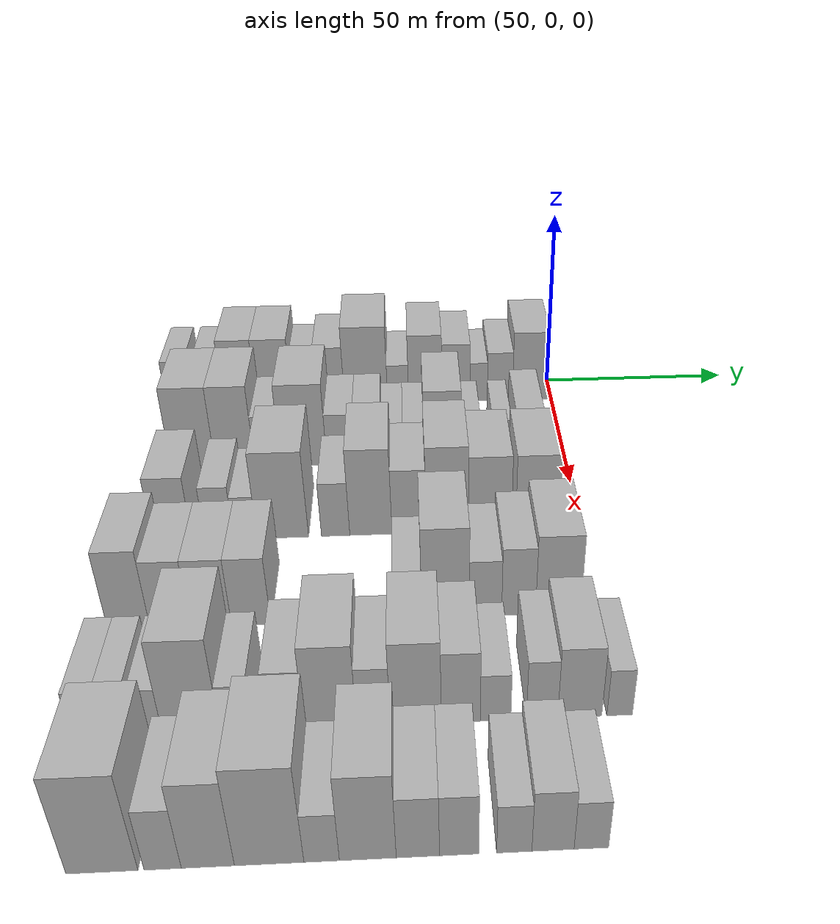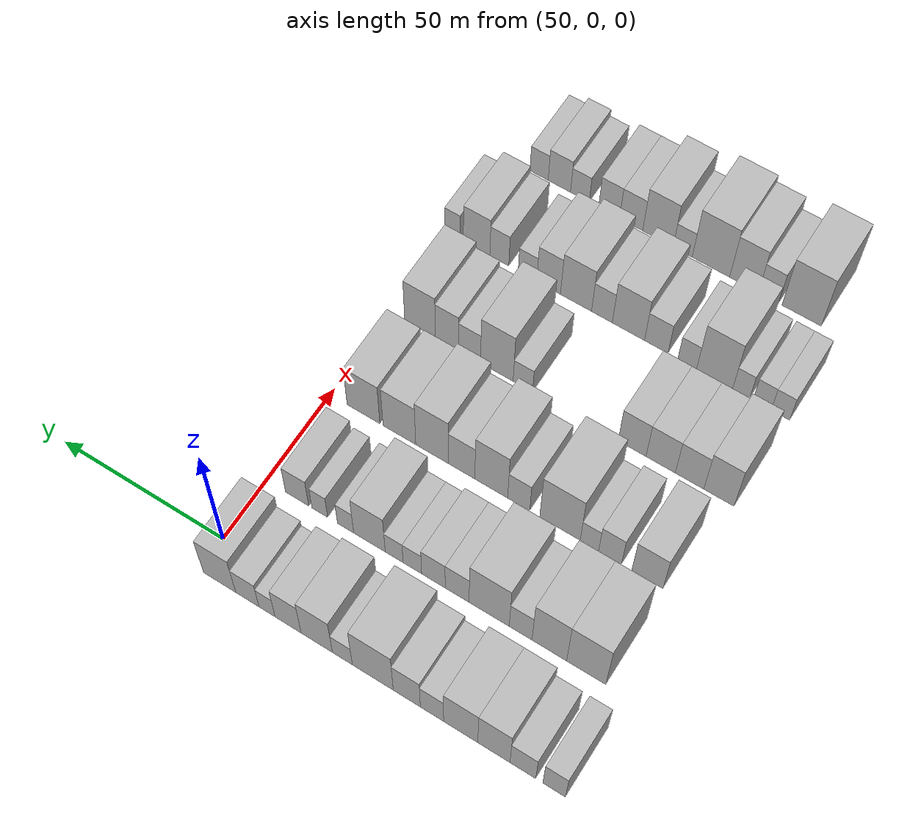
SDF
<sdf version="1.6">
 <world name="default">
  <model name="building_50">
   <static>1</static>
   <pose>50.0000 -103.4571 0 0.000000 0.000000 0.000000</pose>
   <link name="link">
    <pose>0 0 7.50 0 0 0</pose>
    <collision name="collision"><geometry><box><size>20.0000 6.2550 15.0000</size></box></geometry></collision>
    <visual name="visual">
     <cast_shadows>0</cast_shadows>
     <geometry><box><size>20.0000 6.2550 15.0000</size></box></geometry>
     <material>
      <script>
       <uri>model://HANNAS_wall/materials/scripts</uri>
       <uri>model://HANNAS_wall/materials/textures</uri>
       <name>vrc/HANNAS_wall</name>
      </script>
     </material>
    </visual>
   </link>
  </model>
  <model name="building_51">
   <static>1</static>
   <pose>50.0000 -94.7267 0 0.000000 0.000000 0.000000</pose>
   <link name="link">
    <pose>0 0 7.50 0 0 0</pose>
    <collision name="collision"><geometry><box><size>20.0000 7.2057 15.0000</size></box></geometry></collision>
    <visual name="visual">
     <cast_shadows>0</cast_shadows>
     <geometry><box><size>20.0000 7.2057 15.0000</size></box></geometry>
     <material>
      <script>
       <uri>model://HANNAS_wall/materials/scripts</uri>
       <uri>model://HANNAS_wall/materials/textures</uri>
       <name>vrc/HANNAS_wall</name>
      </script>
     </material>
    </visual>
   </link>
  </model>
  <model name="building_52">
   <static>1</static>
   <pose>50.0000 -86.5692 0 0.000000 0.000000 0.000000</pose>
   <link name="link">
    <pose>0 0 10.50 0 0 0</pose>
    <collision name="collision"><geometry><box><size>20.0000 9.1093 21.0000</size></box></geometry></collision>
    <visual name="visual">
     <cast_shadows>0</cast_shadows>
     <geometry><box><size>20.0000 9.1093 21.0000</size></box></geometry>
     <material>
      <script>
       <uri>model://HANNAS_wall/materials/scripts</uri>
       <uri>model://HANNAS_wall/materials/textures</uri>
       <name>vrc/HANNAS_wall</name>
      </script>
     </material>
    </visual>
   </link>
  </model>
  <model name="building_53">
   <static>1</static>
   <pose>50.0000 -77.1655 0 0.000000 0.000000 0.000000</pose>
   <link name="link">
    <pose>0 0 10.50 0 0 0</pose>
    <collision name="collision"><geometry><box><size>20.0000 9.6979 21.0000</size></box></geometry></collision>
    <visual name="visual">
     <cast_shadows>0</cast_shadows>
     <geometry><box><size>20.0000 9.6979 21.0000</size></box></geometry>
     <material>
      <script>
       <uri>model://HANNAS_wall/materials/scripts</uri>
       <uri>model://HANNAS_wall/materials/textures</uri>
       <name>vrc/HANNAS_wall</name>
      </script>
     </material>
    </visual>
   </link>
  </model>
  <model name="building_54">
   <static>1</static>
   <pose>50.0000 -68.9674 0 0.000000 0.000000 0.000000</pose>
   <link name="link">
    <pose>0 0 7.50 0 0 0</pose>
    <collision name="collision"><geometry><box><size>20.0000 6.6983 15.0000</size></box></geometry></collision>
    <visual name="visual">
     <cast_shadows>0</cast_shadows>
     <geometry><box><size>20.0000 6.6983 15.0000</size></box></geometry>
     <material>
      <script>
       <uri>model://HANNAS_wall/materials/scripts</uri>
       <uri>model://HANNAS_wall/materials/textures</uri>
       <name>vrc/HANNAS_wall</name>
      </script>
     </material>
    </visual>
   </link>
  </model>
  <model name="building_55">
   <static>1</static>
   <pose>50.0000 -61.6997 0 0.000000 0.000000 0.000000</pose>
   <link name="link">
    <pose>0 0 9.00 0 0 0</pose>
    <collision name="collision"><geometry><box><size>20.0000 7.8370 18.0000</size></box></geometry></collision>
    <visual name="visual">
     <cast_shadows>0</cast_shadows>
     <geometry><box><size>20.0000 7.8370 18.0000</size></box></geometry>
     <material>
      <script>
       <uri>model://HANNAS_wall/materials/scripts</uri>
       <uri>model://HANNAS_wall/materials/textures</uri>
       <name>vrc/HANNAS_wall</name>
      </script>
     </material>
    </visual>
   </link>
  </model>
  <model name="building_56">
   <static>1</static>
   <pose>50.0000 -51.8079 0 0.000000 0.000000 0.000000</pose>
   <link name="link">
    <pose>0 0 12.00 0 0 0</pose>
    <collision name="collision"><geometry><box><size>20.0000 11.9467 24.0000</size></box></geometry></collision>
    <visual name="visual">
     <cast_shadows>0</cast_shadows>
     <geometry><box><size>20.0000 11.9467 24.0000</size></box></geometry>
     <material>
      <script>
       <uri>model://HANNAS_wall/materials/scripts</uri>
       <uri>model://HANNAS_wall/materials/textures</uri>
       <name>vrc/HANNAS_wall</name>
      </script>
     </material>
    </visual>
   </link>
  </model>
  <model name="building_57">
   <static>1</static>
   <pose>50.0000 -42.8947 0 0.000000 0.000000 0.000000</pose>
   <link name="link">
    <pose>0 0 6.00 0 0 0</pose>
    <collision name="collision"><geometry><box><size>20.0000 5.8796 12.0000</size></box></geometry></collision>
    <visual name="visual">
     <cast_shadows>0</cast_shadows>
     <geometry><box><size>20.0000 5.8796 12.0000</size></box></geometry>
     <material>
      <script>
       <uri>model://HANNAS_wall/materials/scripts</uri>
       <uri>model://HANNAS_wall/materials/textures</uri>
       <name>vrc/HANNAS_wall</name>
      </script>
     </material>
    </visual>
   </link>
  </model>
  <model name="building_58">
   <static>1</static>
   <pose>50.0000 -35.3146 0 0.000000 0.000000 0.000000</pose>
   <link name="link">
    <pose>0 0 10.50 0 0 0</pose>
    <collision name="collision"><geometry><box><size>20.0000 9.2808 21.0000</size></box></geometry></collision>
    <visual name="visual">
     <cast_shadows>0</cast_shadows>
     <geometry><box><size>20.0000 9.2808 21.0000</size></box></geometry>
     <material>
      <script>
       <uri>model://HANNAS_wall/materials/scripts</uri>
       <uri>model://HANNAS_wall/materials/textures</uri>
       <name>vrc/HANNAS_wall</name>
      </script>
     </material>
    </visual>
   </link>
  </model>
  <model name="building_59">
   <static>1</static>
   <pose>50.0000 -26.7613 0 0.000000 0.000000 0.000000</pose>
   <link name="link">
    <pose>0 0 9.00 0 0 0</pose>
    <collision name="collision"><geometry><box><size>20.0000 7.8257 18.0000</size></box></geometry></collision>
    <visual name="visual">
     <cast_shadows>0</cast_shadows>
     <geometry><box><size>20.0000 7.8257 18.0000</size></box></geometry>
     <material>
      <script>
       <uri>model://HANNAS_wall/materials/scripts</uri>
       <uri>model://HANNAS_wall/materials/textures</uri>
       <name>vrc/HANNAS_wall</name>
      </script>
     </material>
    </visual>
   </link>
  </model>
  <model name="building_60">
   <static>1</static>
   <pose>50.0000 -20.4336 0 0.000000 0.000000 0.000000</pose>
   <link name="link">
    <pose>0 0 6.00 0 0 0</pose>
    <collision name="collision"><geometry><box><size>20.0000 4.8297 12.0000</size></box></geometry></collision>
    <visual name="visual">
     <cast_shadows>0</cast_shadows>
     <geometry><box><size>20.0000 4.8297 12.0000</size></box></geometry>
     <material>
      <script>
       <uri>model://HANNAS_wall/materials/scripts</uri>
       <uri>model://HANNAS_wall/materials/textures</uri>
       <name>vrc/HANNAS_wall</name>
      </script>
     </material>
    </visual>
   </link>
  </model>
  <model name="building_61">
   <static>1</static>
   <pose>50.0000 -14.4853 0 0.000000 0.000000 0.000000</pose>
   <link name="link">
    <pose>0 0 7.50 0 0 0</pose>
    <collision name="collision"><geometry><box><size>20.0000 7.0667 15.0000</size></box></geometry></collision>
    <visual name="visual">
     <cast_shadows>0</cast_shadows>
     <geometry><box><size>20.0000 7.0667 15.0000</size></box></geometry>
     <material>
      <script>
       <uri>model://HANNAS_wall/materials/scripts</uri>
       <uri>model://HANNAS_wall/materials/textures</uri>
       <name>vrc/HANNAS_wall</name>
      </script>
     </material>
    </visual>
   </link>
  </model>
  <model name="building_62">
   <static>1</static>
   <pose>50.0000 -6.0214 0 0.000000 0.000000 0.000000</pose>
   <link name="link">
    <pose>0 0 10.50 0 0 0</pose>
    <collision name="collision"><geometry><box><size>20.0000 9.8612 21.0000</size></box></geometry></collision>
    <visual name="visual">
     <cast_shadows>0</cast_shadows>
     <geometry><box><size>20.0000 9.8612 21.0000</size></box></geometry>
     <material>
      <script>
       <uri>model://HANNAS_wall/materials/scripts</uri>
       <uri>model://HANNAS_wall/materials/textures</uri>
       <name>vrc/HANNAS_wall</name>
      </script>
     </material>
    </visual>
   </link>
  </model>
  <model name="building_169">
   <static>1</static>
   <pose>79.0000 -95.0513 0 0.000000 0.000000 0.000000</pose>
   <link name="link">
    <pose>0 0 12.00 0 0 0</pose>
    <collision name="collision"><geometry><box><size>20.0000 11.1471 24.0000</size></box></geometry></collision>
    <visual name="visual">
     <cast_shadows>0</cast_shadows>
     <geometry><box><size>20.0000 11.1471 24.0000</size></box></geometry>
     <material>
      <script>
       <uri>model://HANNAS_wall/materials/scripts</uri>
       <uri>model://HANNAS_wall/materials/textures</uri>
       <name>vrc/HANNAS_wall</name>
      </script>
     </material>
    </visual>
   </link>
  </model>
  <model name="building_170">
   <static>1</static>
   <pose>79.0000 -84.5015 0 0.000000 0.000000 0.000000</pose>
   <link name="link">
    <pose>0 0 12.00 0 0 0</pose>
    <collision name="collision"><geometry><box><size>20.0000 9.9525 24.0000</size></box></geometry></collision>
    <visual name="visual">
     <cast_shadows>0</cast_shadows>
     <geometry><box><size>20.0000 9.9525 24.0000</size></box></geometry>
     <material>
      <script>
       <uri>model://HANNAS_wall/materials/scripts</uri>
       <uri>model://HANNAS_wall/materials/textures</uri>
       <name>vrc/HANNAS_wall</name>
      </script>
     </material>
    </visual>
   </link>
  </model>
  <model name="building_171">
   <static>1</static>
   <pose>79.0000 -76.2337 0 0.000000 0.000000 0.000000</pose>
   <link name="link">
    <pose>0 0 7.50 0 0 0</pose>
    <collision name="collision"><geometry><box><size>20.0000 6.5830 15.0000</size></box></geometry></collision>
    <visual name="visual">
     <cast_shadows>0</cast_shadows>
     <geometry><box><size>20.0000 6.5830 15.0000</size></box></geometry>
     <material>
      <script>
       <uri>model://HANNAS_wall/materials/scripts</uri>
       <uri>model://HANNAS_wall/materials/textures</uri>
       <name>vrc/HANNAS_wall</name>
      </script>
     </material>
    </visual>
   </link>
  </model>
  <model name="building_172">
   <static>1</static>
   <pose>79.0000 -67.0782 0 0.000000 0.000000 0.000000</pose>
   <link name="link">
    <pose>0 0 12.00 0 0 0</pose>
    <collision name="collision"><geometry><box><size>20.0000 11.7280 24.0000</size></box></geometry></collision>
    <visual name="visual">
     <cast_shadows>0</cast_shadows>
     <geometry><box><size>20.0000 11.7280 24.0000</size></box></geometry>
     <material>
      <script>
       <uri>model://HANNAS_wall/materials/scripts</uri>
       <uri>model://HANNAS_wall/materials/textures</uri>
       <name>vrc/HANNAS_wall</name>
      </script>
     </material>
    </visual>
   </link>
  </model>
  <model name="building_173">
   <static>1</static>
   <pose>79.0000 -57.7067 0 0.000000 0.000000 0.000000</pose>
   <link name="link">
    <pose>0 0 7.50 0 0 0</pose>
    <collision name="collision"><geometry><box><size>20.0000 7.0150 15.0000</size></box></geometry></collision>
    <visual name="visual">
     <cast_shadows>0</cast_shadows>
     <geometry><box><size>20.0000 7.0150 15.0000</size></box></geometry>
     <material>
      <script>
       <uri>model://HANNAS_wall/materials/scripts</uri>
       <uri>model://HANNAS_wall/materials/textures</uri>
       <name>vrc/HANNAS_wall</name>
      </script>
     </material>
    </visual>
   </link>
  </model>
  <model name="building_174">
   <static>1</static>
   <pose>79.0000 -50.7053 0 0.000000 0.000000 0.000000</pose>
   <link name="link">
    <pose>0 0 7.50 0 0 0</pose>
    <collision name="collision"><geometry><box><size>20.0000 6.9877 15.0000</size></box></geometry></collision>
    <visual name="visual">
     <cast_shadows>0</cast_shadows>
     <geometry><box><size>20.0000 6.9877 15.0000</size></box></geometry>
     <material>
      <script>
       <uri>model://HANNAS_wall/materials/scripts</uri>
       <uri>model://HANNAS_wall/materials/textures</uri>
       <name>vrc/HANNAS_wall</name>
      </script>
     </material>
    </visual>
   </link>
  </model>
  <model name="building_175">
   <static>1</static>
   <pose>79.0000 -44.4444 0 0.000000 0.000000 0.000000</pose>
   <link name="link">
    <pose>0 0 6.00 0 0 0</pose>
    <collision name="collision"><geometry><box><size>20.0000 5.5342 12.0000</size></box></geometry></collision>
    <visual name="visual">
     <cast_shadows>0</cast_shadows>
     <geometry><box><size>20.0000 5.5342 12.0000</size></box></geometry>
     <material>
      <script>
       <uri>model://HANNAS_wall/materials/scripts</uri>
       <uri>model://HANNAS_wall/materials/textures</uri>
       <name>vrc/HANNAS_wall</name>
      </script>
     </material>
    </visual>
   </link>
  </model>
  <model name="building_176">
   <static>1</static>
   <pose>79.0000 -39.0052 0 0.000000 0.000000 0.000000</pose>
   <link name="link">
    <pose>0 0 6.00 0 0 0</pose>
    <collision name="collision"><geometry><box><size>20.0000 5.3442 12.0000</size></box></geometry></collision>
    <visual name="visual">
     <cast_shadows>0</cast_shadows>
     <geometry><box><size>20.0000 5.3442 12.0000</size></box></geometry>
     <material>
      <script>
       <uri>model://HANNAS_wall/materials/scripts</uri>
       <uri>model://HANNAS_wall/materials/textures</uri>
       <name>vrc/HANNAS_wall</name>
      </script>
     </material>
    </visual>
   </link>
  </model>
  <model name="building_177">
   <static>1</static>
   <pose>79.0000 -31.5619 0 0.000000 0.000000 0.000000</pose>
   <link name="link">
    <pose>0 0 10.50 0 0 0</pose>
    <collision name="collision"><geometry><box><size>20.0000 9.5423 21.0000</size></box></geometry></collision>
    <visual name="visual">
     <cast_shadows>0</cast_shadows>
     <geometry><box><size>20.0000 9.5423 21.0000</size></box></geometry>
     <material>
      <script>
       <uri>model://HANNAS_wall/materials/scripts</uri>
       <uri>model://HANNAS_wall/materials/textures</uri>
       <name>vrc/HANNAS_wall</name>
      </script>
     </material>
    </visual>
   </link>
  </model>
  <model name="building_178">
   <static>1</static>
   <pose>79.0000 -24.3274 0 0.000000 0.000000 0.000000</pose>
   <link name="link">
    <pose>0 0 6.00 0 0 0</pose>
    <collision name="collision"><geometry><box><size>20.0000 4.9267 12.0000</size></box></geometry></collision>
    <visual name="visual">
     <cast_shadows>0</cast_shadows>
     <geometry><box><size>20.0000 4.9267 12.0000</size></box></geometry>
     <material>
      <script>
       <uri>model://HANNAS_wall/materials/scripts</uri>
       <uri>model://HANNAS_wall/materials/textures</uri>
       <name>vrc/HANNAS_wall</name>
      </script>
     </material>
    </visual>
   </link>
  </model>
  <model name="building_179">
   <static>1</static>
   <pose>79.0000 -16.4608 0 0.000000 0.000000 0.000000</pose>
   <link name="link">
    <pose>0 0 6.00 0 0 0</pose>
    <collision name="collision"><geometry><box><size>20.0000 4.8066 12.0000</size></box></geometry></collision>
    <visual name="visual">
     <cast_shadows>0</cast_shadows>
     <geometry><box><size>20.0000 4.8066 12.0000</size></box></geometry>
     <material>
      <script>
       <uri>model://HANNAS_wall/materials/scripts</uri>
       <uri>model://HANNAS_wall/materials/textures</uri>
       <name>vrc/HANNAS_wall</name>
      </script>
     </material>
    </visual>
   </link>
  </model>
  <model name="building_180">
   <static>1</static>
   <pose>79.0000 -9.4882 0 0.000000 0.000000 0.000000</pose>
   <link name="link">
    <pose>0 0 7.50 0 0 0</pose>
    <collision name="collision"><geometry><box><size>20.0000 7.1388 15.0000</size></box></geometry></collision>
    <visual name="visual">
     <cast_shadows>0</cast_shadows>
     <geometry><box><size>20.0000 7.1388 15.0000</size></box></geometry>
     <material>
      <script>
       <uri>model://HANNAS_wall/materials/scripts</uri>
       <uri>model://HANNAS_wall/materials/textures</uri>
       <name>vrc/HANNAS_wall</name>
      </script>
     </material>
    </visual>
   </link>
  </model>
  <model name="building_278">
   <static>1</static>
   <pose>108.0000 -95.5415 0 0.000000 0.000000 0.000000</pose>
   <link name="link">
    <pose>0 0 9.00 0 0 0</pose>
    <collision name="collision"><geometry><box><size>20.0000 8.9699 18.0000</size></box></geometry></collision>
    <visual name="visual">
     <cast_shadows>0</cast_shadows>
     <geometry><box><size>20.0000 8.9699 18.0000</size></box></geometry>
     <material>
      <script>
       <uri>model://HANNAS_wall/materials/scripts</uri>
       <uri>model://HANNAS_wall/materials/textures</uri>
       <name>vrc/HANNAS_wall</name>
      </script>
     </material>
    </visual>
   </link>
  </model>
  <model name="building_279">
   <static>1</static>
   <pose>108.0000 -84.7318 0 0.000000 0.000000 0.000000</pose>
   <link name="link">
    <pose>0 0 7.50 0 0 0</pose>
    <collision name="collision"><geometry><box><size>20.0000 6.6494 15.0000</size></box></geometry></collision>
    <visual name="visual">
     <cast_shadows>0</cast_shadows>
     <geometry><box><size>20.0000 6.6494 15.0000</size></box></geometry>
     <material>
      <script>
       <uri>model://HANNAS_wall/materials/scripts</uri>
       <uri>model://HANNAS_wall/materials/textures</uri>
       <name>vrc/HANNAS_wall</name>
      </script>
     </material>
    </visual>
   </link>
  </model>
  <model name="building_280">
   <static>1</static>
   <pose>108.0000 -78.7129 0 0.000000 0.000000 0.000000</pose>
   <link name="link">
    <pose>0 0 6.00 0 0 0</pose>
    <collision name="collision"><geometry><box><size>20.0000 5.3883 12.0000</size></box></geometry></collision>
    <visual name="visual">
     <cast_shadows>0</cast_shadows>
     <geometry><box><size>20.0000 5.3883 12.0000</size></box></geometry>
     <material>
      <script>
       <uri>model://HANNAS_wall/materials/scripts</uri>
       <uri>model://HANNAS_wall/materials/textures</uri>
       <name>vrc/HANNAS_wall</name>
      </script>
     </material>
    </visual>
   </link>
  </model>
  <model name="building_281">
   <static>1</static>
   <pose>108.0000 -70.0565 0 0.000000 0.000000 0.000000</pose>
   <link name="link">
    <pose>0 0 12.00 0 0 0</pose>
    <collision name="collision"><geometry><box><size>20.0000 11.9246 24.0000</size></box></geometry></collision>
    <visual name="visual">
     <cast_shadows>0</cast_shadows>
     <geometry><box><size>20.0000 11.9246 24.0000</size></box></geometry>
     <material>
      <script>
       <uri>model://HANNAS_wall/materials/scripts</uri>
       <uri>model://HANNAS_wall/materials/textures</uri>
       <name>vrc/HANNAS_wall</name>
      </script>
     </material>
    </visual>
   </link>
  </model>
  <model name="building_282">
   <static>1</static>
   <pose>108.0000 -57.7945 0 0.000000 0.000000 0.000000</pose>
   <link name="link">
    <pose>0 0 7.50 0 0 0</pose>
    <collision name="collision"><geometry><box><size>20.0000 6.5992 15.0000</size></box></geometry></collision>
    <visual name="visual">
     <cast_shadows>0</cast_shadows>
     <geometry><box><size>20.0000 6.5992 15.0000</size></box></geometry>
     <material>
      <script>
       <uri>model://HANNAS_wall/materials/scripts</uri>
       <uri>model://HANNAS_wall/materials/textures</uri>
       <name>vrc/HANNAS_wall</name>
      </script>
     </material>
    </visual>
   </link>
  </model>
  <model name="building_283">
   <static>1</static>
   <pose>108.0000 -49.5520 0 0.000000 0.000000 0.000000</pose>
   <link name="link">
    <pose>0 0 12.00 0 0 0</pose>
    <collision name="collision"><geometry><box><size>20.0000 9.8858 24.0000</size></box></geometry></collision>
    <visual name="visual">
     <cast_shadows>0</cast_shadows>
     <geometry><box><size>20.0000 9.8858 24.0000</size></box></geometry>
     <material>
      <script>
       <uri>model://HANNAS_wall/materials/scripts</uri>
       <uri>model://HANNAS_wall/materials/textures</uri>
       <name>vrc/HANNAS_wall</name>
      </script>
     </material>
    </visual>
   </link>
  </model>
  <model name="building_284">
   <static>1</static>
   <pose>108.0000 -40.5963 0 0.000000 0.000000 0.000000</pose>
   <link name="link">
    <pose>0 0 9.00 0 0 0</pose>
    <collision name="collision"><geometry><box><size>20.0000 8.0256 18.0000</size></box></geometry></collision>
    <visual name="visual">
     <cast_shadows>0</cast_shadows>
     <geometry><box><size>20.0000 8.0256 18.0000</size></box></geometry>
     <material>
      <script>
       <uri>model://HANNAS_wall/materials/scripts</uri>
       <uri>model://HANNAS_wall/materials/textures</uri>
       <name>vrc/HANNAS_wall</name>
      </script>
     </material>
    </visual>
   </link>
  </model>
  <model name="building_285">
   <static>1</static>
   <pose>108.0000 -31.6114 0 0.000000 0.000000 0.000000</pose>
   <link name="link">
    <pose>0 0 12.00 0 0 0</pose>
    <collision name="collision"><geometry><box><size>20.0000 9.9443 24.0000</size></box></geometry></collision>
    <visual name="visual">
     <cast_shadows>0</cast_shadows>
     <geometry><box><size>20.0000 9.9443 24.0000</size></box></geometry>
     <material>
      <script>
       <uri>model://HANNAS_wall/materials/scripts</uri>
       <uri>model://HANNAS_wall/materials/textures</uri>
       <name>vrc/HANNAS_wall</name>
      </script>
     </material>
    </visual>
   </link>
  </model>
  <model name="building_286">
   <static>1</static>
   <pose>108.0000 -21.5923 0 0.000000 0.000000 0.000000</pose>
   <link name="link">
    <pose>0 0 10.50 0 0 0</pose>
    <collision name="collision"><geometry><box><size>20.0000 10.0939 21.0000</size></box></geometry></collision>
    <visual name="visual">
     <cast_shadows>0</cast_shadows>
     <geometry><box><size>20.0000 10.0939 21.0000</size></box></geometry>
     <material>
      <script>
       <uri>model://HANNAS_wall/materials/scripts</uri>
       <uri>model://HANNAS_wall/materials/textures</uri>
       <name>vrc/HANNAS_wall</name>
      </script>
     </material>
    </visual>
   </link>
  </model>
  <model name="building_287">
   <static>1</static>
   <pose>108.0000 -10.4360 0 0.000000 0.000000 0.000000</pose>
   <link name="link">
    <pose>0 0 10.50 0 0 0</pose>
    <collision name="collision"><geometry><box><size>20.0000 10.2186 21.0000</size></box></geometry></collision>
    <visual name="visual">
     <cast_shadows>0</cast_shadows>
     <geometry><box><size>20.0000 10.2186 21.0000</size></box></geometry>
     <material>
      <script>
       <uri>model://HANNAS_wall/materials/scripts</uri>
       <uri>model://HANNAS_wall/materials/textures</uri>
       <name>vrc/HANNAS_wall</name>
      </script>
     </material>
    </visual>
   </link>
  </model>
  <model name="building_390">
   <static>1</static>
   <pose>137.0000 -99.8120 0 0.000000 0.000000 0.000000</pose>
   <link name="link">
    <pose>0 0 10.50 0 0 0</pose>
    <collision name="collision"><geometry><box><size>20.0000 8.8115 21.0000</size></box></geometry></collision>
    <visual name="visual">
     <cast_shadows>0</cast_shadows>
     <geometry><box><size>20.0000 8.8115 21.0000</size></box></geometry>
     <material>
      <script>
       <uri>model://HANNAS_wall/materials/scripts</uri>
       <uri>model://HANNAS_wall/materials/textures</uri>
       <name>vrc/HANNAS_wall</name>
      </script>
     </material>
    </visual>
   </link>
  </model>
  <model name="building_391">
   <static>1</static>
   <pose>137.0000 -91.2320 0 0.000000 0.000000 0.000000</pose>
   <link name="link">
    <pose>0 0 9.00 0 0 0</pose>
    <collision name="collision"><geometry><box><size>20.0000 8.3484 18.0000</size></box></geometry></collision>
    <visual name="visual">
     <cast_shadows>0</cast_shadows>
     <geometry><box><size>20.0000 8.3484 18.0000</size></box></geometry>
     <material>
      <script>
       <uri>model://HANNAS_wall/materials/scripts</uri>
       <uri>model://HANNAS_wall/materials/textures</uri>
       <name>vrc/HANNAS_wall</name>
      </script>
     </material>
    </visual>
   </link>
  </model>
  <model name="building_392">
   <static>1</static>
   <pose>137.0000 -82.7375 0 0.000000 0.000000 0.000000</pose>
   <link name="link">
    <pose>0 0 9.00 0 0 0</pose>
    <collision name="collision"><geometry><box><size>20.0000 8.6407 18.0000</size></box></geometry></collision>
    <visual name="visual">
     <cast_shadows>0</cast_shadows>
     <geometry><box><size>20.0000 8.6407 18.0000</size></box></geometry>
     <material>
      <script>
       <uri>model://HANNAS_wall/materials/scripts</uri>
       <uri>model://HANNAS_wall/materials/textures</uri>
       <name>vrc/HANNAS_wall</name>
      </script>
     </material>
    </visual>
   </link>
  </model>
  <model name="building_393">
   <static>1</static>
   <pose>137.0000 -74.2795 0 0.000000 0.000000 0.000000</pose>
   <link name="link">
    <pose>0 0 9.00 0 0 0</pose>
    <collision name="collision"><geometry><box><size>20.0000 8.2752 18.0000</size></box></geometry></collision>
    <visual name="visual">
     <cast_shadows>0</cast_shadows>
     <geometry><box><size>20.0000 8.2752 18.0000</size></box></geometry>
     <material>
      <script>
       <uri>model://HANNAS_wall/materials/scripts</uri>
       <uri>model://HANNAS_wall/materials/textures</uri>
       <name>vrc/HANNAS_wall</name>
      </script>
     </material>
    </visual>
   </link>
  </model>
  <model name="building_394">
   <static>1</static>
   <pose>137.0000 -41.1997 0 0.000000 0.000000 0.000000</pose>
   <link name="link">
    <pose>0 0 6.00 0 0 0</pose>
    <collision name="collision"><geometry><box><size>20.0000 5.9615 12.0000</size></box></geometry></collision>
    <visual name="visual">
     <cast_shadows>0</cast_shadows>
     <geometry><box><size>20.0000 5.9615 12.0000</size></box></geometry>
     <material>
      <script>
       <uri>model://HANNAS_wall/materials/scripts</uri>
       <uri>model://HANNAS_wall/materials/textures</uri>
       <name>vrc/HANNAS_wall</name>
      </script>
     </material>
    </visual>
   </link>
  </model>
  <model name="building_395">
   <static>1</static>
   <pose>137.0000 -33.1572 0 0.000000 0.000000 0.000000</pose>
   <link name="link">
    <pose>0 0 12.00 0 0 0</pose>
    <collision name="collision"><geometry><box><size>20.0000 10.1235 24.0000</size></box></geometry></collision>
    <visual name="visual">
     <cast_shadows>0</cast_shadows>
     <geometry><box><size>20.0000 10.1235 24.0000</size></box></geometry>
     <material>
      <script>
       <uri>model://HANNAS_wall/materials/scripts</uri>
       <uri>model://HANNAS_wall/materials/textures</uri>
       <name>vrc/HANNAS_wall</name>
      </script>
     </material>
    </visual>
   </link>
  </model>
  <model name="building_396">
   <static>1</static>
   <pose>137.0000 -24.6772 0 0.000000 0.000000 0.000000</pose>
   <link name="link">
    <pose>0 0 7.50 0 0 0</pose>
    <collision name="collision"><geometry><box><size>20.0000 6.8364 15.0000</size></box></geometry></collision>
    <visual name="visual">
     <cast_shadows>0</cast_shadows>
     <geometry><box><size>20.0000 6.8364 15.0000</size></box></geometry>
     <material>
      <script>
       <uri>model://HANNAS_wall/materials/scripts</uri>
       <uri>model://HANNAS_wall/materials/textures</uri>
       <name>vrc/HANNAS_wall</name>
      </script>
     </material>
    </visual>
   </link>
  </model>
  <model name="building_397">
   <static>1</static>
   <pose>137.0000 -17.6363 0 0.000000 0.000000 0.000000</pose>
   <link name="link">
    <pose>0 0 9.00 0 0 0</pose>
    <collision name="collision"><geometry><box><size>20.0000 7.2454 18.0000</size></box></geometry></collision>
    <visual name="visual">
     <cast_shadows>0</cast_shadows>
     <geometry><box><size>20.0000 7.2454 18.0000</size></box></geometry>
     <material>
      <script>
       <uri>model://HANNAS_wall/materials/scripts</uri>
       <uri>model://HANNAS_wall/materials/textures</uri>
       <name>vrc/HANNAS_wall</name>
      </script>
     </material>
    </visual>
   </link>
  </model>
  <model name="building_398">
   <static>1</static>
   <pose>137.0000 -9.1556 0 0.000000 0.000000 0.000000</pose>
   <link name="link">
    <pose>0 0 10.50 0 0 0</pose>
    <collision name="collision"><geometry><box><size>20.0000 9.7160 21.0000</size></box></geometry></collision>
    <visual name="visual">
     <cast_shadows>0</cast_shadows>
     <geometry><box><size>20.0000 9.7160 21.0000</size></box></geometry>
     <material>
      <script>
       <uri>model://HANNAS_wall/materials/scripts</uri>
       <uri>model://HANNAS_wall/materials/textures</uri>
       <name>vrc/HANNAS_wall</name>
      </script>
     </material>
    </visual>
   </link>
  </model>
  <model name="building_501">
   <static>1</static>
   <pose>166.0000 -101.9785 0 0.000000 0.000000 0.000000</pose>
   <link name="link">
    <pose>0 0 6.00 0 0 0</pose>
    <collision name="collision"><geometry><box><size>20.0000 5.4381 12.0000</size></box></geometry></collision>
    <visual name="visual">
     <cast_shadows>0</cast_shadows>
     <geometry><box><size>20.0000 5.4381 12.0000</size></box></geometry>
     <material>
      <script>
       <uri>model://HANNAS_wall/materials/scripts</uri>
       <uri>model://HANNAS_wall/materials/textures</uri>
       <name>vrc/HANNAS_wall</name>
      </script>
     </material>
    </visual>
   </link>
  </model>
  <model name="building_502">
   <static>1</static>
   <pose>166.0000 -96.5808 0 0.000000 0.000000 0.000000</pose>
   <link name="link">
    <pose>0 0 6.00 0 0 0</pose>
    <collision name="collision"><geometry><box><size>20.0000 5.3573 12.0000</size></box></geometry></collision>
    <visual name="visual">
     <cast_shadows>0</cast_shadows>
     <geometry><box><size>20.0000 5.3573 12.0000</size></box></geometry>
     <material>
      <script>
       <uri>model://HANNAS_wall/materials/scripts</uri>
       <uri>model://HANNAS_wall/materials/textures</uri>
       <name>vrc/HANNAS_wall</name>
      </script>
     </material>
    </visual>
   </link>
  </model>
  <model name="building_503">
   <static>1</static>
   <pose>166.0000 -90.3633 0 0.000000 0.000000 0.000000</pose>
   <link name="link">
    <pose>0 0 6.00 0 0 0</pose>
    <collision name="collision"><geometry><box><size>20.0000 5.0776 12.0000</size></box></geometry></collision>
    <visual name="visual">
     <cast_shadows>0</cast_shadows>
     <geometry><box><size>20.0000 5.0776 12.0000</size></box></geometry>
     <material>
      <script>
       <uri>model://HANNAS_wall/materials/scripts</uri>
       <uri>model://HANNAS_wall/materials/textures</uri>
       <name>vrc/HANNAS_wall</name>
      </script>
     </material>
    </visual>
   </link>
  </model>
  <model name="building_504">
   <static>1</static>
   <pose>166.0000 -82.4186 0 0.000000 0.000000 0.000000</pose>
   <link name="link">
    <pose>0 0 12.00 0 0 0</pose>
    <collision name="collision"><geometry><box><size>20.0000 10.8117 24.0000</size></box></geometry></collision>
    <visual name="visual">
     <cast_shadows>0</cast_shadows>
     <geometry><box><size>20.0000 10.8117 24.0000</size></box></geometry>
     <material>
      <script>
       <uri>model://HANNAS_wall/materials/scripts</uri>
       <uri>model://HANNAS_wall/materials/textures</uri>
       <name>vrc/HANNAS_wall</name>
      </script>
     </material>
    </visual>
   </link>
  </model>
  <model name="building_505">
   <static>1</static>
   <pose>166.0000 -74.1905 0 0.000000 0.000000 0.000000</pose>
   <link name="link">
    <pose>0 0 6.00 0 0 0</pose>
    <collision name="collision"><geometry><box><size>20.0000 5.6444 12.0000</size></box></geometry></collision>
    <visual name="visual">
     <cast_shadows>0</cast_shadows>
     <geometry><box><size>20.0000 5.6444 12.0000</size></box></geometry>
     <material>
      <script>
       <uri>model://HANNAS_wall/materials/scripts</uri>
       <uri>model://HANNAS_wall/materials/textures</uri>
       <name>vrc/HANNAS_wall</name>
      </script>
     </material>
    </visual>
   </link>
  </model>
  <model name="building_506">
   <static>1</static>
   <pose>166.0000 -64.7946 0 0.000000 0.000000 0.000000</pose>
   <link name="link">
    <pose>0 0 7.50 0 0 0</pose>
    <collision name="collision"><geometry><box><size>20.0000 7.1475 15.0000</size></box></geometry></collision>
    <visual name="visual">
     <cast_shadows>0</cast_shadows>
     <geometry><box><size>20.0000 7.1475 15.0000</size></box></geometry>
     <material>
      <script>
       <uri>model://HANNAS_wall/materials/scripts</uri>
       <uri>model://HANNAS_wall/materials/textures</uri>
       <name>vrc/HANNAS_wall</name>
      </script>
     </material>
    </visual>
   </link>
  </model>
  <model name="building_507">
   <static>1</static>
   <pose>166.0000 -56.2692 0 0.000000 0.000000 0.000000</pose>
   <link name="link">
    <pose>0 0 10.50 0 0 0</pose>
    <collision name="collision"><geometry><box><size>20.0000 9.9032 21.0000</size></box></geometry></collision>
    <visual name="visual">
     <cast_shadows>0</cast_shadows>
     <geometry><box><size>20.0000 9.9032 21.0000</size></box></geometry>
     <material>
      <script>
       <uri>model://HANNAS_wall/materials/scripts</uri>
       <uri>model://HANNAS_wall/materials/textures</uri>
       <name>vrc/HANNAS_wall</name>
      </script>
     </material>
    </visual>
   </link>
  </model>
  <model name="building_508">
   <static>1</static>
   <pose>166.0000 -48.1118 0 0.000000 0.000000 0.000000</pose>
   <link name="link">
    <pose>0 0 7.50 0 0 0</pose>
    <collision name="collision"><geometry><box><size>20.0000 6.4116 15.0000</size></box></geometry></collision>
    <visual name="visual">
     <cast_shadows>0</cast_shadows>
     <geometry><box><size>20.0000 6.4116 15.0000</size></box></geometry>
     <material>
      <script>
       <uri>model://HANNAS_wall/materials/scripts</uri>
       <uri>model://HANNAS_wall/materials/textures</uri>
       <name>vrc/HANNAS_wall</name>
      </script>
     </material>
    </visual>
   </link>
  </model>
  <model name="building_509">
   <static>1</static>
   <pose>166.0000 -40.0515 0 0.000000 0.000000 0.000000</pose>
   <link name="link">
    <pose>0 0 10.50 0 0 0</pose>
    <collision name="collision"><geometry><box><size>20.0000 9.7092 21.0000</size></box></geometry></collision>
    <visual name="visual">
     <cast_shadows>0</cast_shadows>
     <geometry><box><size>20.0000 9.7092 21.0000</size></box></geometry>
     <material>
      <script>
       <uri>model://HANNAS_wall/materials/scripts</uri>
       <uri>model://HANNAS_wall/materials/textures</uri>
       <name>vrc/HANNAS_wall</name>
      </script>
     </material>
    </visual>
   </link>
  </model>
  <model name="building_510">
   <static>1</static>
   <pose>166.0000 -31.4717 0 0.000000 0.000000 0.000000</pose>
   <link name="link">
    <pose>0 0 9.00 0 0 0</pose>
    <collision name="collision"><geometry><box><size>20.0000 7.4505 18.0000</size></box></geometry></collision>
    <visual name="visual">
     <cast_shadows>0</cast_shadows>
     <geometry><box><size>20.0000 7.4505 18.0000</size></box></geometry>
     <material>
      <script>
       <uri>model://HANNAS_wall/materials/scripts</uri>
       <uri>model://HANNAS_wall/materials/textures</uri>
       <name>vrc/HANNAS_wall</name>
      </script>
     </material>
    </visual>
   </link>
  </model>
  <model name="building_511">
   <static>1</static>
   <pose>166.0000 -24.8340 0 0.000000 0.000000 0.000000</pose>
   <link name="link">
    <pose>0 0 6.00 0 0 0</pose>
    <collision name="collision"><geometry><box><size>20.0000 5.8249 12.0000</size></box></geometry></collision>
    <visual name="visual">
     <cast_shadows>0</cast_shadows>
     <geometry><box><size>20.0000 5.8249 12.0000</size></box></geometry>
     <material>
      <script>
       <uri>model://HANNAS_wall/materials/scripts</uri>
       <uri>model://HANNAS_wall/materials/textures</uri>
       <name>vrc/HANNAS_wall</name>
      </script>
     </material>
    </visual>
   </link>
  </model>
  <model name="building_512">
   <static>1</static>
   <pose>166.0000 -15.9080 0 0.000000 0.000000 0.000000</pose>
   <link name="link">
    <pose>0 0 7.50 0 0 0</pose>
    <collision name="collision"><geometry><box><size>20.0000 6.0271 15.0000</size></box></geometry></collision>
    <visual name="visual">
     <cast_shadows>0</cast_shadows>
     <geometry><box><size>20.0000 6.0271 15.0000</size></box></geometry>
     <material>
      <script>
       <uri>model://HANNAS_wall/materials/scripts</uri>
       <uri>model://HANNAS_wall/materials/textures</uri>
       <name>vrc/HANNAS_wall</name>
      </script>
     </material>
    </visual>
   </link>
  </model>
  <model name="building_513">
   <static>1</static>
   <pose>166.0000 -8.6383 0 0.000000 0.000000 0.000000</pose>
   <link name="link">
    <pose>0 0 9.00 0 0 0</pose>
    <collision name="collision"><geometry><box><size>20.0000 8.5123 18.0000</size></box></geometry></collision>
    <visual name="visual">
     <cast_shadows>0</cast_shadows>
     <geometry><box><size>20.0000 8.5123 18.0000</size></box></geometry>
     <material>
      <script>
       <uri>model://HANNAS_wall/materials/scripts</uri>
       <uri>model://HANNAS_wall/materials/textures</uri>
       <name>vrc/HANNAS_wall</name>
      </script>
     </material>
    </visual>
   </link>
  </model>
  <model name="building_514">
   <static>1</static>
   <pose>166.0000 -0.9140 0 0.000000 0.000000 0.000000</pose>
   <link name="link">
    <pose>0 0 6.00 0 0 0</pose>
    <collision name="collision"><geometry><box><size>20.0000 4.9364 12.0000</size></box></geometry></collision>
    <visual name="visual">
     <cast_shadows>0</cast_shadows>
     <geometry><box><size>20.0000 4.9364 12.0000</size></box></geometry>
     <material>
      <script>
       <uri>model://HANNAS_wall/materials/scripts</uri>
       <uri>model://HANNAS_wall/materials/textures</uri>
       <name>vrc/HANNAS_wall</name>
      </script>
     </material>
    </visual>
   </link>
  </model>
  <model name="building_619">
   <static>1</static>
   <pose>195.0000 -92.7858 0 0.000000 0.000000 0.000000</pose>
   <link name="link">
    <pose>0 0 12.00 0 0 0</pose>
    <collision name="collision"><geometry><box><size>20.0000 11.8351 24.0000</size></box></geometry></collision>
    <visual name="visual">
     <cast_shadows>0</cast_shadows>
     <geometry><box><size>20.0000 11.8351 24.0000</size></box></geometry>
     <material>
      <script>
       <uri>model://HANNAS_wall/materials/scripts</uri>
       <uri>model://HANNAS_wall/materials/textures</uri>
       <name>vrc/HANNAS_wall</name>
      </script>
     </material>
    </visual>
   </link>
  </model>
  <model name="building_620">
   <static>1</static>
   <pose>195.0000 -82.7951 0 0.000000 0.000000 0.000000</pose>
   <link name="link">
    <pose>0 0 7.50 0 0 0</pose>
    <collision name="collision"><geometry><box><size>20.0000 6.1464 15.0000</size></box></geometry></collision>
    <visual name="visual">
     <cast_shadows>0</cast_shadows>
     <geometry><box><size>20.0000 6.1464 15.0000</size></box></geometry>
     <material>
      <script>
       <uri>model://HANNAS_wall/materials/scripts</uri>
       <uri>model://HANNAS_wall/materials/textures</uri>
       <name>vrc/HANNAS_wall</name>
      </script>
     </material>
    </visual>
   </link>
  </model>
  <model name="building_621">
   <static>1</static>
   <pose>195.0000 -75.3268 0 0.000000 0.000000 0.000000</pose>
   <link name="link">
    <pose>0 0 10.50 0 0 0</pose>
    <collision name="collision"><geometry><box><size>20.0000 8.7902 21.0000</size></box></geometry></collision>
    <visual name="visual">
     <cast_shadows>0</cast_shadows>
     <geometry><box><size>20.0000 8.7902 21.0000</size></box></geometry>
     <material>
      <script>
       <uri>model://HANNAS_wall/materials/scripts</uri>
       <uri>model://HANNAS_wall/materials/textures</uri>
       <name>vrc/HANNAS_wall</name>
      </script>
     </material>
    </visual>
   </link>
  </model>
  <model name="building_622">
   <static>1</static>
   <pose>195.0000 -65.1465 0 0.000000 0.000000 0.000000</pose>
   <link name="link">
    <pose>0 0 12.00 0 0 0</pose>
    <collision name="collision"><geometry><box><size>20.0000 11.5703 24.0000</size></box></geometry></collision>
    <visual name="visual">
     <cast_shadows>0</cast_shadows>
     <geometry><box><size>20.0000 11.5703 24.0000</size></box></geometry>
     <material>
      <script>
       <uri>model://HANNAS_wall/materials/scripts</uri>
       <uri>model://HANNAS_wall/materials/textures</uri>
       <name>vrc/HANNAS_wall</name>
      </script>
     </material>
    </visual>
   </link>
  </model>
  <model name="building_623">
   <static>1</static>
   <pose>195.0000 -56.3941 0 0.000000 0.000000 0.000000</pose>
   <link name="link">
    <pose>0 0 6.00 0 0 0</pose>
    <collision name="collision"><geometry><box><size>20.0000 5.9345 12.0000</size></box></geometry></collision>
    <visual name="visual">
     <cast_shadows>0</cast_shadows>
     <geometry><box><size>20.0000 5.9345 12.0000</size></box></geometry>
     <material>
      <script>
       <uri>model://HANNAS_wall/materials/scripts</uri>
       <uri>model://HANNAS_wall/materials/textures</uri>
       <name>vrc/HANNAS_wall</name>
      </script>
     </material>
    </visual>
   </link>
  </model>
  <model name="building_624">
   <static>1</static>
   <pose>195.0000 -48.6611 0 0.000000 0.000000 0.000000</pose>
   <link name="link">
    <pose>0 0 10.50 0 0 0</pose>
    <collision name="collision"><geometry><box><size>20.0000 9.5315 21.0000</size></box></geometry></collision>
    <visual name="visual">
     <cast_shadows>0</cast_shadows>
     <geometry><box><size>20.0000 9.5315 21.0000</size></box></geometry>
     <material>
      <script>
       <uri>model://HANNAS_wall/materials/scripts</uri>
       <uri>model://HANNAS_wall/materials/textures</uri>
       <name>vrc/HANNAS_wall</name>
      </script>
     </material>
    </visual>
   </link>
  </model>
  <model name="building_625">
   <static>1</static>
   <pose>195.0000 -40.2424 0 0.000000 0.000000 0.000000</pose>
   <link name="link">
    <pose>0 0 7.50 0 0 0</pose>
    <collision name="collision"><geometry><box><size>20.0000 7.3061 15.0000</size></box></geometry></collision>
    <visual name="visual">
     <cast_shadows>0</cast_shadows>
     <geometry><box><size>20.0000 7.3061 15.0000</size></box></geometry>
     <material>
      <script>
       <uri>model://HANNAS_wall/materials/scripts</uri>
       <uri>model://HANNAS_wall/materials/textures</uri>
       <name>vrc/HANNAS_wall</name>
      </script>
     </material>
    </visual>
   </link>
  </model>
  <model name="building_626">
   <static>1</static>
   <pose>195.0000 -33.2597 0 0.000000 0.000000 0.000000</pose>
   <link name="link">
    <pose>0 0 7.50 0 0 0</pose>
    <collision name="collision"><geometry><box><size>20.0000 6.6592 15.0000</size></box></geometry></collision>
    <visual name="visual">
     <cast_shadows>0</cast_shadows>
     <geometry><box><size>20.0000 6.6592 15.0000</size></box></geometry>
     <material>
      <script>
       <uri>model://HANNAS_wall/materials/scripts</uri>
       <uri>model://HANNAS_wall/materials/textures</uri>
       <name>vrc/HANNAS_wall</name>
      </script>
     </material>
    </visual>
   </link>
  </model>
  <model name="building_627">
   <static>1</static>
   <pose>195.0000 -23.9441 0 0.000000 0.000000 0.000000</pose>
   <link name="link">
    <pose>0 0 6.00 0 0 0</pose>
    <collision name="collision"><geometry><box><size>20.0000 5.9720 12.0000</size></box></geometry></collision>
    <visual name="visual">
     <cast_shadows>0</cast_shadows>
     <geometry><box><size>20.0000 5.9720 12.0000</size></box></geometry>
     <material>
      <script>
       <uri>model://HANNAS_wall/materials/scripts</uri>
       <uri>model://HANNAS_wall/materials/textures</uri>
       <name>vrc/HANNAS_wall</name>
      </script>
     </material>
    </visual>
   </link>
  </model>
  <model name="building_628">
   <static>1</static>
   <pose>195.0000 -17.3571 0 0.000000 0.000000 0.000000</pose>
   <link name="link">
    <pose>0 0 7.50 0 0 0</pose>
    <collision name="collision"><geometry><box><size>20.0000 7.2021 15.0000</size></box></geometry></collision>
    <visual name="visual">
     <cast_shadows>0</cast_shadows>
     <geometry><box><size>20.0000 7.2021 15.0000</size></box></geometry>
     <material>
      <script>
       <uri>model://HANNAS_wall/materials/scripts</uri>
       <uri>model://HANNAS_wall/materials/textures</uri>
       <name>vrc/HANNAS_wall</name>
      </script>
     </material>
    </visual>
   </link>
  </model>
  <model name="building_629">
   <static>1</static>
   <pose>195.0000 -10.8076 0 0.000000 0.000000 0.000000</pose>
   <link name="link">
    <pose>0 0 6.00 0 0 0</pose>
    <collision name="collision"><geometry><box><size>20.0000 5.8970 12.0000</size></box></geometry></collision>
    <visual name="visual">
     <cast_shadows>0</cast_shadows>
     <geometry><box><size>20.0000 5.8970 12.0000</size></box></geometry>
     <material>
      <script>
       <uri>model://HANNAS_wall/materials/scripts</uri>
       <uri>model://HANNAS_wall/materials/textures</uri>
       <name>vrc/HANNAS_wall</name>
      </script>
     </material>
    </visual>
   </link>
  </model>
 </world>
</sdf>
